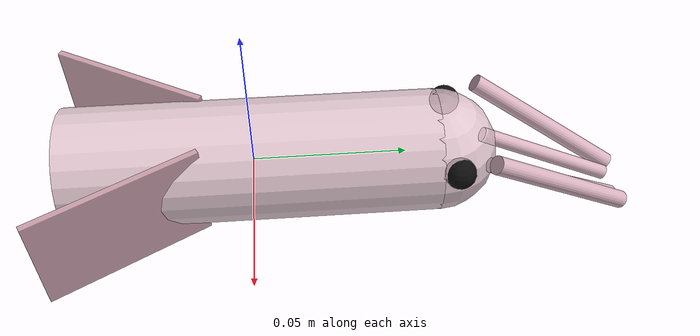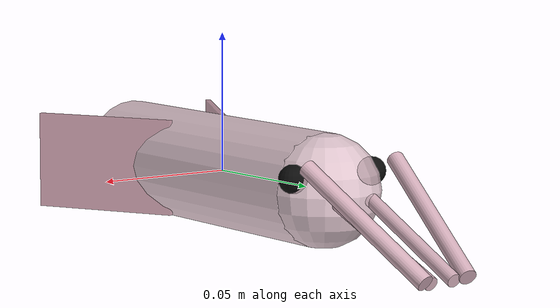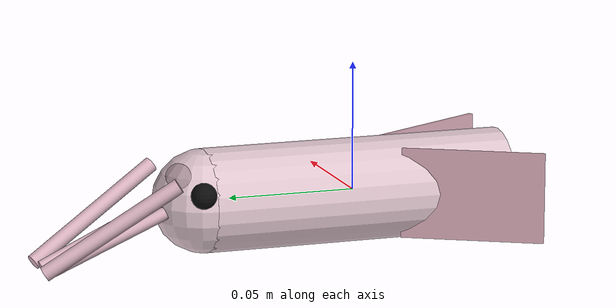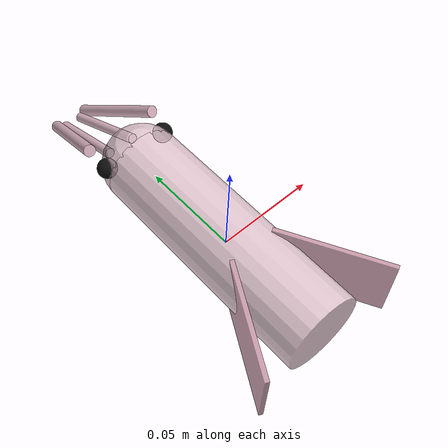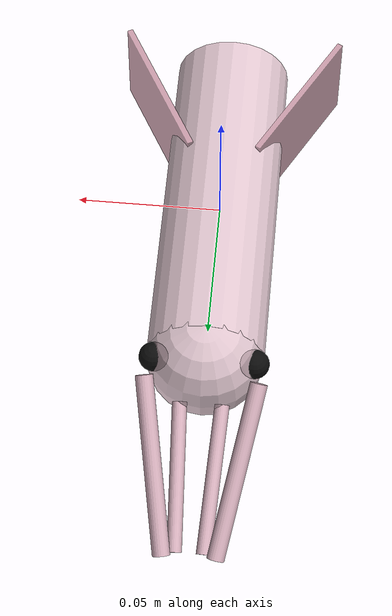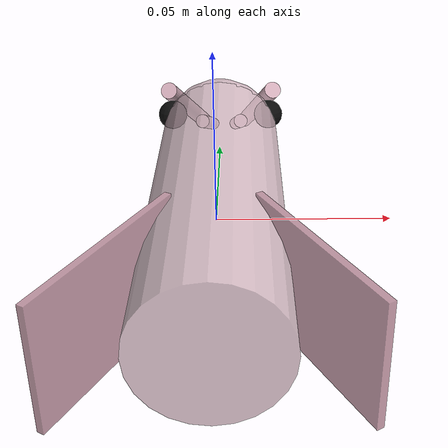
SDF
<?xml version="1.0" ?>
<sdf version="1.7">
  <model name="squid">
    <link name="link">

      <inertial>
        <mass>0.04</mass>
        <inertia>
          <ixx>0.0000533</ixx>
          <iyy>0.00001067</iyy>
          <izz>0.0000533</izz>
          <ixy>0</ixy><ixz>0</ixz><iyz>0</iyz>
        </inertia>
      </inertial>

      <collision name="collision">
        <pose>0 0 0 0 0 0</pose>
        <geometry>
          <box><size>0.04 0.12 0.04</size></box>
        </geometry>
        <surface>
          <friction><ode><mu>0.6</mu><mu2>0.6</mu2></ode></friction>
        </surface>
      </collision>

      <!-- mantle (main body tube) -->
      <visual name="mantle">
        <pose>0 0 0 1.5708 0 0</pose>
        <geometry>
          <cylinder><radius>0.02</radius><length>0.12</length></cylinder>
        </geometry>
        <material>
          <ambient>0.82 0.68 0.72 0.85</ambient>
          <diffuse>0.90 0.78 0.82 0.85</diffuse>
          <specular>0.4 0.4 0.4 1</specular>
        </material>
      </visual>

      <!-- rounded head cap, front (+Y) end -->
      <visual name="head_cap">
        <pose>0 0.06 0 0 0 0</pose>
        <geometry>
          <sphere><radius>0.02</radius></sphere>
        </geometry>
        <material>
          <ambient>0.82 0.68 0.72 0.85</ambient>
          <diffuse>0.90 0.78 0.82 0.85</diffuse>
        </material>
      </visual>

      <!-- two angled fins near the rear (-Y) end -->
      <visual name="fin_left">
        <pose>0.025 -0.04 0 0 0 0.5</pose>
        <geometry>
          <box><size>0.002 0.055 0.035</size></box>
        </geometry>
        <material>
          <ambient>0.70 0.50 0.56 0.85</ambient>
          <diffuse>0.78 0.58 0.64 0.85</diffuse>
        </material>
      </visual>

      <visual name="fin_right">
        <pose>-0.025 -0.04 0 0 0 -0.5</pose>
        <geometry>
          <box><size>0.002 0.055 0.035</size></box>
        </geometry>
        <material>
          <ambient>0.70 0.50 0.56 0.85</ambient>
          <diffuse>0.78 0.58 0.64 0.85</diffuse>
        </material>
      </visual>

      <!-- eyes on the head -->
      <visual name="eye_left">
        <pose>0.017 0.065 0.006 0 0 0</pose>
        <geometry>
          <sphere><radius>0.005</radius></sphere>
        </geometry>
        <material>
          <ambient>0.03 0.03 0.03 1</ambient>
          <diffuse>0.05 0.05 0.05 1</diffuse>
        </material>
      </visual>

      <visual name="eye_right">
        <pose>-0.017 0.065 0.006 0 0 0</pose>
        <geometry>
          <sphere><radius>0.005</radius></sphere>
        </geometry>
        <material>
          <ambient>0.03 0.03 0.03 1</ambient>
          <diffuse>0.05 0.05 0.05 1</diffuse>
        </material>
      </visual>

      <!-- tentacles, splayed from the front end -->
      <visual name="tentacle_1">
        <pose>0.014 0.10 -0.005 1.0 0 0.2</pose>
        <geometry>
          <cylinder><radius>0.003</radius><length>0.06</length></cylinder>
        </geometry>
        <material>
          <ambient>0.78 0.62 0.68 0.9</ambient>
          <diffuse>0.85 0.70 0.75 0.9</diffuse>
        </material>
      </visual>

      <visual name="tentacle_2">
        <pose>-0.014 0.10 -0.005 1.0 0 -0.2</pose>
        <geometry>
          <cylinder><radius>0.003</radius><length>0.06</length></cylinder>
        </geometry>
        <material>
          <ambient>0.78 0.62 0.68 0.9</ambient>
          <diffuse>0.85 0.70 0.75 0.9</diffuse>
        </material>
      </visual>

      <visual name="tentacle_3">
        <pose>0.006 0.10 -0.012 1.15 0 0.05</pose>
        <geometry>
          <cylinder><radius>0.0025</radius><length>0.05</length></cylinder>
        </geometry>
        <material>
          <ambient>0.78 0.62 0.68 0.9</ambient>
          <diffuse>0.85 0.70 0.75 0.9</diffuse>
        </material>
      </visual>

      <visual name="tentacle_4">
        <pose>-0.006 0.10 -0.012 1.15 0 -0.05</pose>
        <geometry>
          <cylinder><radius>0.0025</radius><length>0.05</length></cylinder>
        </geometry>
        <material>
          <ambient>0.78 0.62 0.68 0.9</ambient>
          <diffuse>0.85 0.70 0.75 0.9</diffuse>
        </material>
      </visual>

    </link>
  </model>
</sdf>
